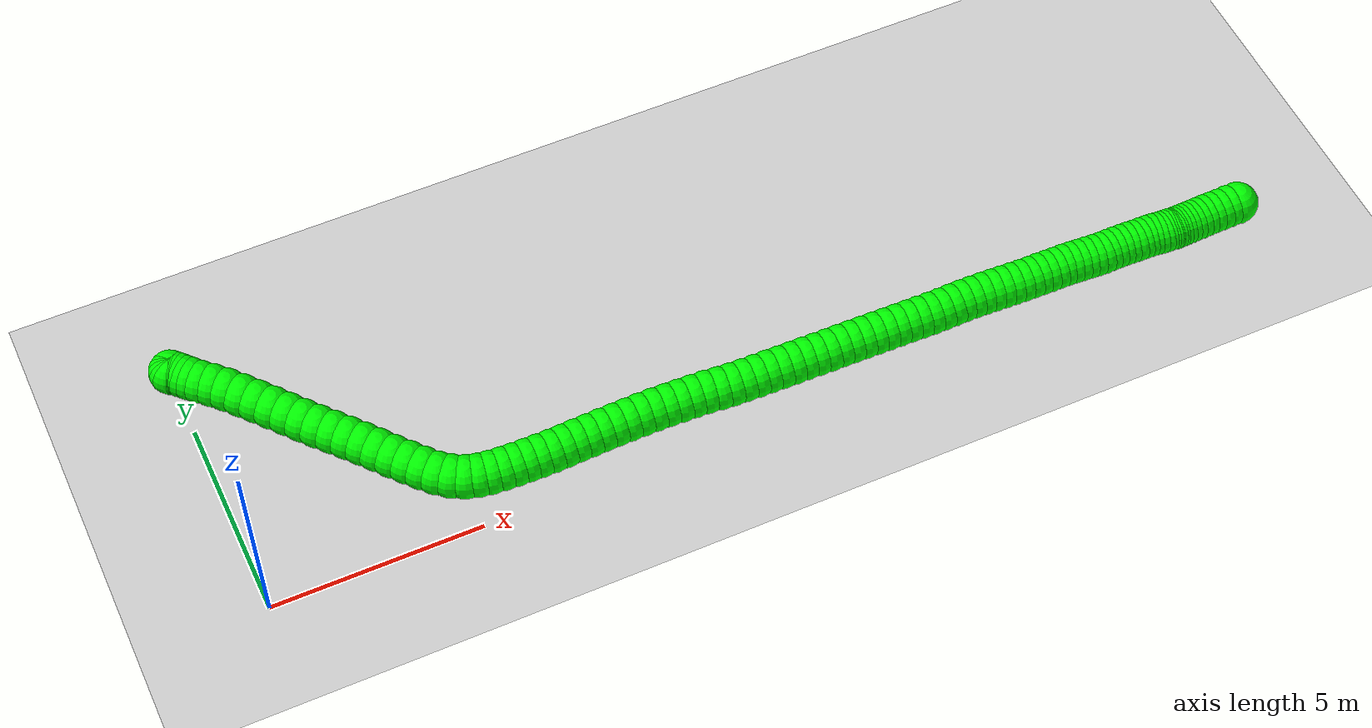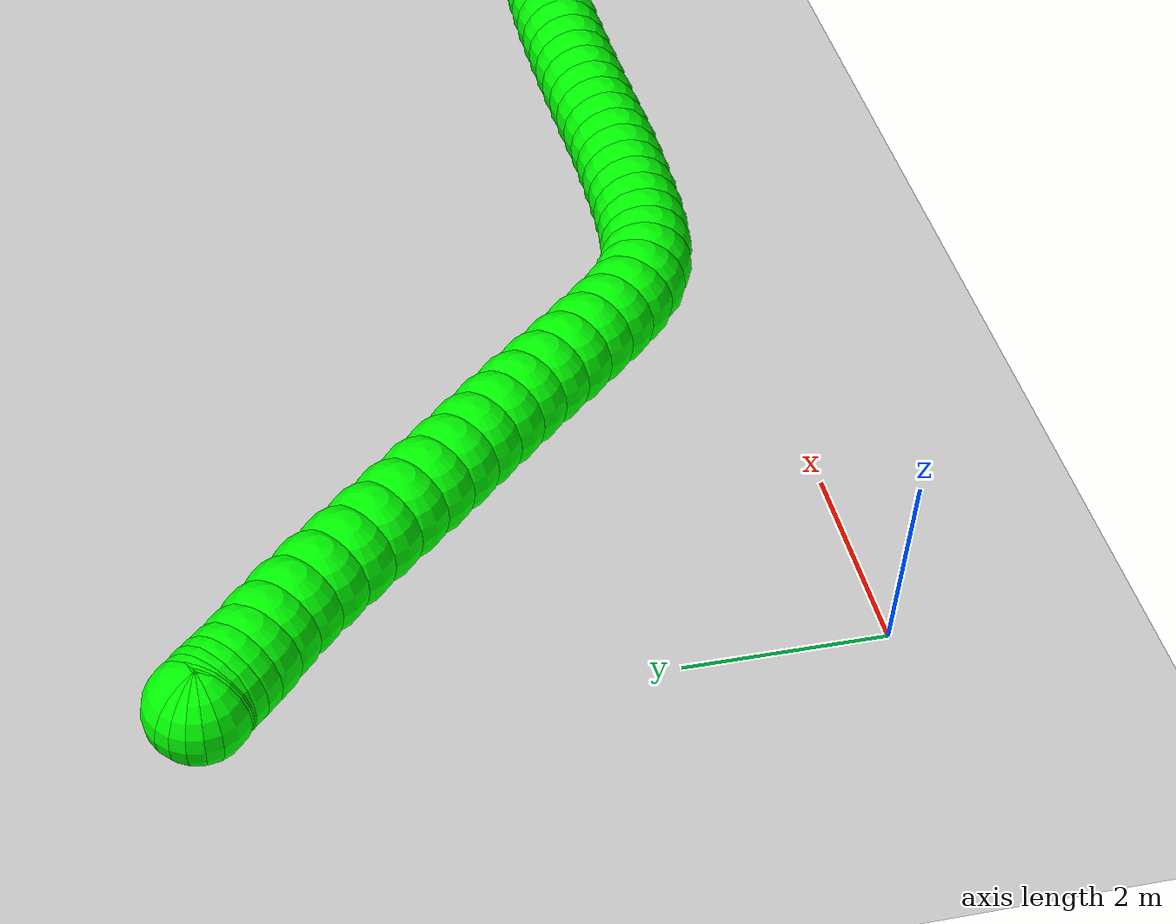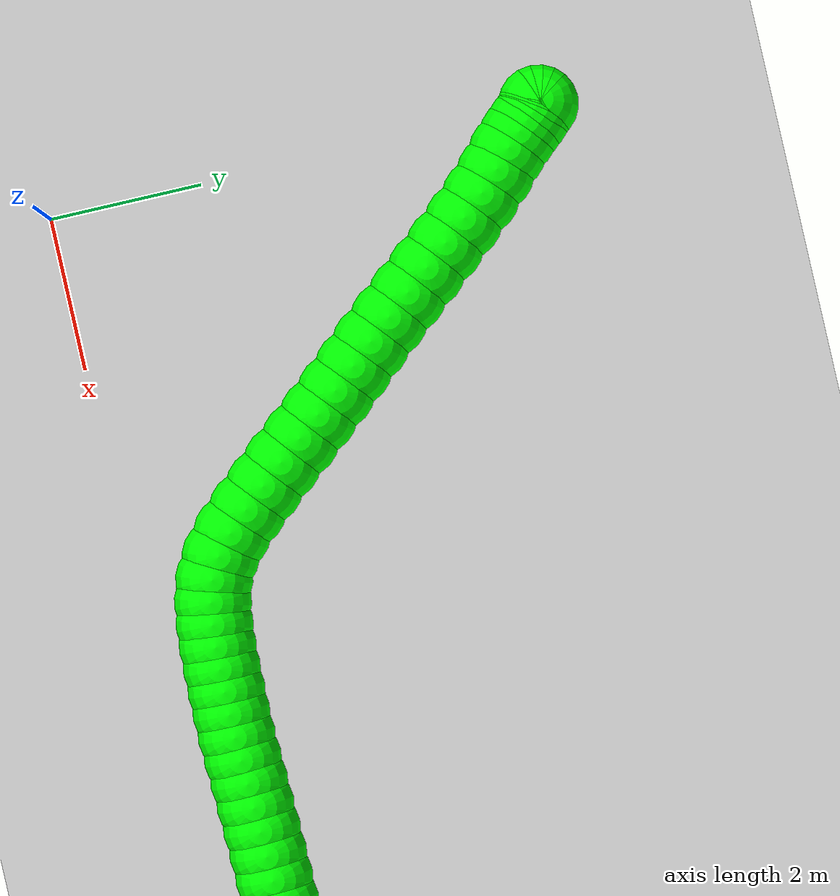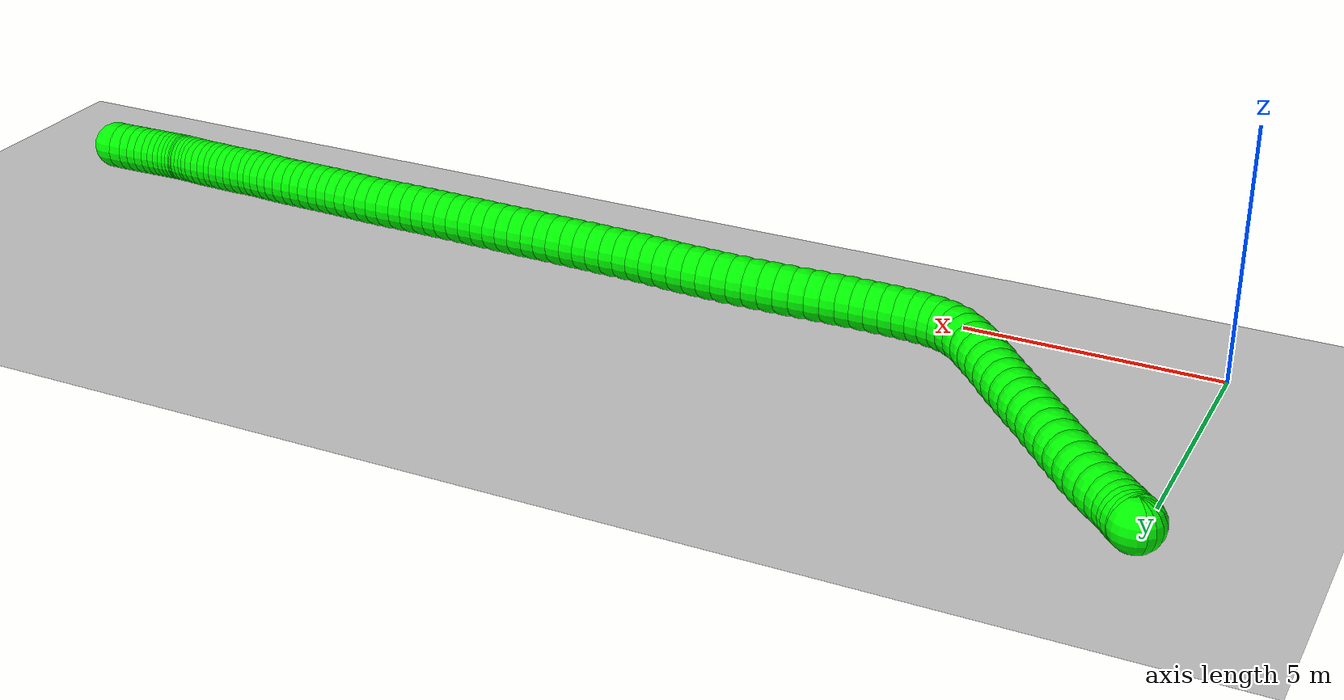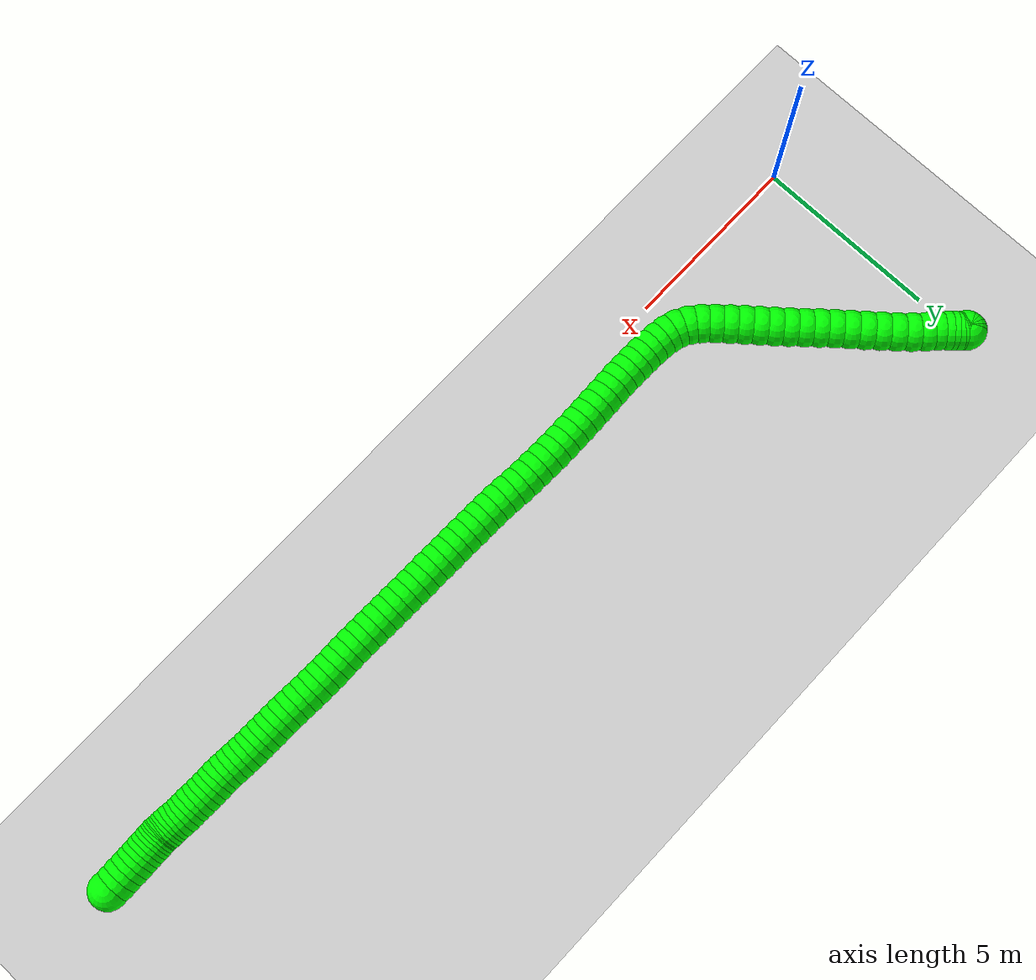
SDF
<sdf version="1.6">
 <world name="default">
  <include><uri>model://sun</uri></include>
  <include><uri>model://ground_plane</uri></include>
  <model name="marker_674">
   <static>true</static>
   <link name="link">
    <visual name="visual">
     <geometry><sphere><radius>0.5</radius></sphere></geometry>
     <material><ambient>0 1 0 1</ambient><diffuse>0 1 0 1</diffuse></material>
     <pose>24.420982491630593 0.6300563863723189 0.5 0 0 0</pose>
    </visual>
   </link>
  </model>
  <model name="marker_675">
   <static>true</static>
   <link name="link">
    <visual name="visual">
     <geometry><sphere><radius>0.5</radius></sphere></geometry>
     <material><ambient>0 1 0 1</ambient><diffuse>0 1 0 1</diffuse></material>
     <pose>24.180184734168744 0.6329165645176913 0.5 0 0 0</pose>
    </visual>
   </link>
  </model>
  <model name="marker_676">
   <static>true</static>
   <link name="link">
    <visual name="visual">
     <geometry><sphere><radius>0.5</radius></sphere></geometry>
     <material><ambient>0 1 0 1</ambient><diffuse>0 1 0 1</diffuse></material>
     <pose>23.95524102753745 0.6247446269574106 0.5 0 0 0</pose>
    </visual>
   </link>
  </model>
  <model name="marker_677">
   <static>true</static>
   <link name="link">
    <visual name="visual">
     <geometry><sphere><radius>0.5</radius></sphere></geometry>
     <material><ambient>0 1 0 1</ambient><diffuse>0 1 0 1</diffuse></material>
     <pose>23.749368135677127 0.6206586581700122 0.5 0 0 0</pose>
    </visual>
   </link>
  </model>
  <model name="marker_678">
   <static>true</static>
   <link name="link">
    <visual name="visual">
     <geometry><sphere><radius>0.5</radius></sphere></geometry>
     <material><ambient>0 1 0 1</ambient><diffuse>0 1 0 1</diffuse></material>
     <pose>23.560727907746017 0.6177984800246398 0.5 0 0 0</pose>
    </visual>
   </link>
  </model>
  <model name="marker_679">
   <static>true</static>
   <link name="link">
    <visual name="visual">
     <geometry><sphere><radius>0.5</radius></sphere></geometry>
     <material><ambient>0 1 0 1</ambient><diffuse>0 1 0 1</diffuse></material>
     <pose>23.390469188003895 0.6104437362160323 0.5 0 0 0</pose>
    </visual>
   </link>
  </model>
  <model name="marker_680">
   <static>true</static>
   <link name="link">
    <visual name="visual">
     <geometry><sphere><radius>0.5</radius></sphere></geometry>
     <material><ambient>0 1 0 1</ambient><diffuse>0 1 0 1</diffuse></material>
     <pose>23.238362207611868 0.605131976793866 0.5 0 0 0</pose>
    </visual>
   </link>
  </model>
  <model name="marker_681">
   <static>true</static>
   <link name="link">
    <visual name="visual">
     <geometry><sphere><radius>0.5</radius></sphere></geometry>
     <material><ambient>0 1 0 1</ambient><diffuse>0 1 0 1</diffuse></material>
     <pose>23.10509627315192 0.6006374111306308 0.5 0 0 0</pose>
    </visual>
   </link>
  </model>
  <model name="marker_682">
   <static>true</static>
   <link name="link">
    <visual name="visual">
     <geometry><sphere><radius>0.5</radius></sphere></geometry>
     <material><ambient>0 1 0 1</ambient><diffuse>0 1 0 1</diffuse></material>
     <pose>22.987454620650976 0.5973686361094219 0.5 0 0 0</pose>
    </visual>
   </link>
  </model>
  <model name="marker_683">
   <static>true</static>
   <link name="link">
    <visual name="visual">
     <geometry><sphere><radius>0.5</radius></sphere></geometry>
     <material><ambient>0 1 0 1</ambient><diffuse>0 1 0 1</diffuse></material>
     <pose>22.889573089470336 0.5940998610809548 0.5 0 0 0</pose>
    </visual>
   </link>
  </model>
  <model name="marker_684">
   <static>true</static>
   <link name="link">
    <visual name="visual">
     <geometry><sphere><radius>0.5</radius></sphere></geometry>
     <material><ambient>0 1 0 1</ambient><diffuse>0 1 0 1</diffuse></material>
     <pose>22.80846468454113 0.5912396829283242 0.5 0 0 0</pose>
    </visual>
   </link>
  </model>
  <model name="marker_685">
   <static>true</static>
   <link name="link">
    <visual name="visual">
     <geometry><sphere><radius>0.5</radius></sphere></geometry>
     <material><ambient>0 1 0 1</ambient><diffuse>0 1 0 1</diffuse></material>
     <pose>22.745737787800902 0.5855193266375794 0.5 0 0 0</pose>
    </visual>
   </link>
  </model>
  <model name="marker_686">
   <static>true</static>
   <link name="link">
    <visual name="visual">
     <geometry><sphere><radius>0.5</radius></sphere></geometry>
     <material><ambient>0 1 0 1</ambient><diffuse>0 1 0 1</diffuse></material>
     <pose>22.703690087769207 0.5875623110240205 0.5 0 0 0</pose>
    </visual>
   </link>
  </model>
  <model name="marker_687">
   <static>true</static>
   <link name="link">
    <visual name="visual">
     <geometry><sphere><radius>0.5</radius></sphere></geometry>
     <material><ambient>0 1 0 1</ambient><diffuse>0 1 0 1</diffuse></material>
     <pose>22.66669730251969 0.5896052954177198 0.5 0 0 0</pose>
    </visual>
   </link>
  </model>
  <model name="marker_688">
   <static>true</static>
   <link name="link">
    <visual name="visual">
     <geometry><sphere><radius>0.5</radius></sphere></geometry>
     <material><ambient>0 1 0 1</ambient><diffuse>0 1 0 1</diffuse></material>
     <pose>22.609255089400534 0.5985944267441898 0.5 0 0 0</pose>
    </visual>
   </link>
  </model>
  <model name="marker_689">
   <static>true</static>
   <link name="link">
    <visual name="visual">
     <geometry><sphere><radius>0.5</radius></sphere></geometry>
     <material><ambient>0 1 0 1</ambient><diffuse>0 1 0 1</diffuse></material>
     <pose>22.52791691559978 0.6034975892832615 0.5 0 0 0</pose>
    </visual>
   </link>
  </model>
  <model name="marker_690">
   <static>true</static>
   <link name="link">
    <visual name="visual">
     <geometry><sphere><radius>0.5</radius></sphere></geometry>
     <material><ambient>0 1 0 1</ambient><diffuse>0 1 0 1</diffuse></material>
     <pose>22.428197233577382 0.6043147830349346 0.5 0 0 0</pose>
    </visual>
   </link>
  </model>
  <model name="marker_691">
   <static>true</static>
   <link name="link">
    <visual name="visual">
     <geometry><sphere><radius>0.5</radius></sphere></geometry>
     <material><ambient>0 1 0 1</ambient><diffuse>0 1 0 1</diffuse></material>
     <pose>22.306649510586688 0.614121108120336 0.5 0 0 0</pose>
    </visual>
   </link>
  </model>
  <model name="marker_692">
   <static>true</static>
   <link name="link">
    <visual name="visual">
     <geometry><sphere><radius>0.5</radius></sphere></geometry>
     <material><ambient>0 1 0 1</ambient><diffuse>0 1 0 1</diffuse></material>
     <pose>22.16970727447588 0.6300563863723189 0.5 0 0 0</pose>
    </visual>
   </link>
  </model>
  <model name="marker_693">
   <static>true</static>
   <link name="link">
    <visual name="visual">
     <geometry><sphere><radius>0.5</radius></sphere></geometry>
     <material><ambient>0 1 0 1</ambient><diffuse>0 1 0 1</diffuse></material>
     <pose>22.023574284286905 0.6394541145746255 0.5 0 0 0</pose>
    </visual>
   </link>
  </model>
  <model name="marker_694">
   <static>true</static>
   <link name="link">
    <visual name="visual">
     <geometry><sphere><radius>0.5</radius></sphere></geometry>
     <material><ambient>0 1 0 1</ambient><diffuse>0 1 0 1</diffuse></material>
     <pose>21.870318459635108 0.6419056958441614 0.5 0 0 0</pose>
    </visual>
   </link>
  </model>
  <model name="marker_695">
   <static>true</static>
   <link name="link">
    <visual name="visual">
     <geometry><sphere><radius>0.5</radius></sphere></geometry>
     <material><ambient>0 1 0 1</ambient><diffuse>0 1 0 1</diffuse></material>
     <pose>21.705344423514052 0.6427228896030927 0.5 0 0 0</pose>
    </visual>
   </link>
  </model>
  <model name="marker_696">
   <static>true</static>
   <link name="link">
    <visual name="visual">
     <geometry><sphere><radius>0.5</radius></sphere></geometry>
     <material><ambient>0 1 0 1</ambient><diffuse>0 1 0 1</diffuse></material>
     <pose>21.53600477919281 0.6525292146812359 0.5 0 0 0</pose>
    </visual>
   </link>
  </model>
  <model name="marker_697">
   <static>true</static>
   <link name="link">
    <visual name="visual">
     <geometry><sphere><radius>0.5</radius></sphere></geometry>
     <material><ambient>0 1 0 1</ambient><diffuse>0 1 0 1</diffuse></material>
     <pose>21.360001838151835 0.6566151834613763 0.5 0 0 0</pose>
    </visual>
   </link>
  </model>
  <model name="marker_698">
   <static>true</static>
   <link name="link">
    <visual name="visual">
     <geometry><sphere><radius>0.5</radius></sphere></geometry>
     <material><ambient>0 1 0 1</ambient><diffuse>0 1 0 1</diffuse></material>
     <pose>21.17963328891067 0.6578409740961442 0.5 0 0 0</pose>
    </visual>
   </link>
  </model>
  <model name="marker_699">
   <static>true</static>
   <link name="link">
    <visual name="visual">
     <geometry><sphere><radius>0.5</radius></sphere></geometry>
     <material><ambient>0 1 0 1</ambient><diffuse>0 1 0 1</diffuse></material>
     <pose>21.00202196589948 0.6574323772203076 0.5 0 0 0</pose>
    </visual>
   </link>
  </model>
  <model name="marker_700">
   <static>true</static>
   <link name="link">
    <visual name="visual">
     <geometry><sphere><radius>0.5</radius></sphere></geometry>
     <material><ambient>0 1 0 1</ambient><diffuse>0 1 0 1</diffuse></material>
     <pose>20.818896190428333 0.6521206177981412 0.5 0 0 0</pose>
    </visual>
   </link>
  </model>
  <model name="marker_701">
   <static>true</static>
   <link name="link">
    <visual name="visual">
     <geometry><sphere><radius>0.5</radius></sphere></geometry>
     <material><ambient>0 1 0 1</ambient><diffuse>0 1 0 1</diffuse></material>
     <pose>20.630026193658335 0.6582495709792389 0.5 0 0 0</pose>
    </visual>
   </link>
  </model>
  <model name="marker_702">
   <static>true</static>
   <link name="link">
    <visual name="visual">
     <geometry><sphere><radius>0.5</radius></sphere></geometry>
     <material><ambient>0 1 0 1</ambient><diffuse>0 1 0 1</diffuse></material>
     <pose>20.440237121467455 0.6717332679616859 0.5 0 0 0</pose>
    </visual>
   </link>
  </model>
  <model name="marker_703">
   <static>true</static>
   <link name="link">
    <visual name="visual">
     <geometry><sphere><radius>0.5</radius></sphere></geometry>
     <material><ambient>0 1 0 1</ambient><diffuse>0 1 0 1</diffuse></material>
     <pose>20.24309544597486 0.6831739805504337 0.5 0 0 0</pose>
    </visual>
   </link>
  </model>
  <model name="marker_704">
   <static>true</static>
   <link name="link">
    <visual name="visual">
     <geometry><sphere><radius>0.5</radius></sphere></geometry>
     <material><ambient>0 1 0 1</ambient><diffuse>0 1 0 1</diffuse></material>
     <pose>20.04503469509404 0.6954318869053708 0.5 0 0 0</pose>
    </visual>
   </link>
  </model>
  <model name="marker_705">
   <static>true</static>
   <link name="link">
    <visual name="visual">
     <geometry><sphere><radius>0.5</radius></sphere></geometry>
     <material><ambient>0 1 0 1</ambient><diffuse>0 1 0 1</diffuse></material>
     <pose>19.839621340944152 0.706464002618282 0.5 0 0 0</pose>
    </visual>
   </link>
  </model>
  <model name="marker_706">
   <static>true</static>
   <link name="link">
    <visual name="visual">
     <geometry><sphere><radius>0.5</radius></sphere></geometry>
     <material><ambient>0 1 0 1</ambient><diffuse>0 1 0 1</diffuse></material>
     <pose>19.634207986761616 0.7060554057424455 0.5 0 0 0</pose>
    </visual>
   </link>
  </model>
  <model name="marker_707">
   <static>true</static>
   <link name="link">
    <visual name="visual">
     <geometry><sphere><radius>0.5</radius></sphere></geometry>
     <material><ambient>0 1 0 1</ambient><diffuse>0 1 0 1</diffuse></material>
     <pose>19.417306189981367 0.7097327776467492 0.5 0 0 0</pose>
    </visual>
   </link>
  </model>
  <model name="marker_708">
   <static>true</static>
   <link name="link">
    <visual name="visual">
     <geometry><sphere><radius>0.5</radius></sphere></geometry>
     <material><ambient>0 1 0 1</ambient><diffuse>0 1 0 1</diffuse></material>
     <pose>19.197876935810033 0.7150445370616574 0.5 0 0 0</pose>
    </visual>
   </link>
  </model>
  <model name="marker_709">
   <static>true</static>
   <link name="link">
    <visual name="visual">
     <geometry><sphere><radius>0.5</radius></sphere></geometry>
     <material><ambient>0 1 0 1</ambient><diffuse>0 1 0 1</diffuse></material>
     <pose>18.97040577178765 0.715453133937494 0.5 0 0 0</pose>
    </visual>
   </link>
  </model>
  <model name="marker_710">
   <static>true</static>
   <link name="link">
    <visual name="visual">
     <geometry><sphere><radius>0.5</radius></sphere></geometry>
     <material><ambient>0 1 0 1</ambient><diffuse>0 1 0 1</diffuse></material>
     <pose>18.73650107991708 0.7203562964838238 0.5 0 0 0</pose>
    </visual>
   </link>
  </model>
  <model name="marker_711">
   <static>true</static>
   <link name="link">
    <visual name="visual">
     <geometry><sphere><radius>0.5</radius></sphere></geometry>
     <material><ambient>0 1 0 1</ambient><diffuse>0 1 0 1</diffuse></material>
     <pose>18.496392629037217 0.7297540246788723 0.5 0 0 0</pose>
    </visual>
   </link>
  </model>
  <model name="marker_712">
   <static>true</static>
   <link name="link">
    <visual name="visual">
     <geometry><sphere><radius>0.5</radius></sphere></geometry>
     <material><ambient>0 1 0 1</ambient><diffuse>0 1 0 1</diffuse></material>
     <pose>18.24916134369453 0.7403775435159469 0.5 0 0 0</pose>
    </visual>
   </link>
  </model>
  <model name="marker_713">
   <static>true</static>
   <link name="link">
    <visual name="visual">
     <geometry><sphere><radius>0.5</radius></sphere></geometry>
     <material><ambient>0 1 0 1</ambient><diffuse>0 1 0 1</diffuse></material>
     <pose>17.997104912473866 0.7526354498708842 0.5 0 0 0</pose>
    </visual>
   </link>
  </model>
  <model name="marker_714">
   <static>true</static>
   <link name="link">
    <visual name="visual">
     <geometry><sphere><radius>0.5</radius></sphere></geometry>
     <material><ambient>0 1 0 1</ambient><diffuse>0 1 0 1</diffuse></material>
     <pose>17.73953402876059 0.7632589687007005 0.5 0 0 0</pose>
    </visual>
   </link>
  </model>
  <model name="marker_715">
   <static>true</static>
   <link name="link">
    <visual name="visual">
     <geometry><sphere><radius>0.5</radius></sphere></geometry>
     <material><ambient>0 1 0 1</ambient><diffuse>0 1 0 1</diffuse></material>
     <pose>17.478746381139544 0.7681621312470304 0.5 0 0 0</pose>
    </visual>
   </link>
  </model>
  <model name="marker_716">
   <static>true</static>
   <link name="link">
    <visual name="visual">
     <geometry><sphere><radius>0.5</radius></sphere></geometry>
     <material><ambient>0 1 0 1</ambient><diffuse>0 1 0 1</diffuse></material>
     <pose>17.215201507288523 0.7726566969030072 0.5 0 0 0</pose>
    </visual>
   </link>
  </model>
  <model name="marker_717">
   <static>true</static>
   <link name="link">
    <visual name="visual">
     <geometry><sphere><radius>0.5</radius></sphere></geometry>
     <material><ambient>0 1 0 1</ambient><diffuse>0 1 0 1</diffuse></material>
     <pose>16.943844492457995 0.7661191468533312 0.5 0 0 0</pose>
    </visual>
   </link>
  </model>
  <model name="marker_718">
   <static>true</static>
   <link name="link">
    <visual name="visual">
     <geometry><sphere><radius>0.5</radius></sphere></geometry>
     <material><ambient>0 1 0 1</ambient><diffuse>0 1 0 1</diffuse></material>
     <pose>16.666283718585518 0.7608073874311647 0.5 0 0 0</pose>
    </visual>
   </link>
  </model>
  <model name="marker_719">
   <static>true</static>
   <link name="link">
    <visual name="visual">
     <geometry><sphere><radius>0.5</radius></sphere></geometry>
     <material><ambient>0 1 0 1</ambient><diffuse>0 1 0 1</diffuse></material>
     <pose>16.38964202013392 0.7599901936794916 0.5 0 0 0</pose>
    </visual>
   </link>
  </model>
  <model name="marker_720">
   <static>true</static>
   <link name="link">
    <visual name="visual">
     <geometry><sphere><radius>0.5</radius></sphere></geometry>
     <material><ambient>0 1 0 1</ambient><diffuse>0 1 0 1</diffuse></material>
     <pose>16.107715638061258 0.7657105499774945 0.5 0 0 0</pose>
    </visual>
   </link>
  </model>
  <model name="marker_721">
   <static>true</static>
   <link name="link">
    <visual name="visual">
     <geometry><sphere><radius>0.5</radius></sphere></geometry>
     <material><ambient>0 1 0 1</ambient><diffuse>0 1 0 1</diffuse></material>
     <pose>15.826019024860138 0.7718395031513341 0.5 0 0 0</pose>
    </visual>
   </link>
  </model>
  <model name="marker_722">
   <static>true</static>
   <link name="link">
    <visual name="visual">
     <geometry><sphere><radius>0.5</radius></sphere></geometry>
     <material><ambient>0 1 0 1</ambient><diffuse>0 1 0 1</diffuse></material>
     <pose>15.54156518542904 0.7771512625662423 0.5 0 0 0</pose>
    </visual>
   </link>
  </model>
  <model name="marker_723">
   <static>true</static>
   <link name="link">
    <visual name="visual">
     <geometry><sphere><radius>0.5</radius></sphere></geometry>
     <material><ambient>0 1 0 1</ambient><diffuse>0 1 0 1</diffuse></material>
     <pose>15.252975506636643 0.7832802157400818 0.5 0 0 0</pose>
    </visual>
   </link>
  </model>
  <model name="marker_724">
   <static>true</static>
   <link name="link">
    <visual name="visual">
     <geometry><sphere><radius>0.5</radius></sphere></geometry>
     <material><ambient>0 1 0 1</ambient><diffuse>0 1 0 1</diffuse></material>
     <pose>14.963466752456023 0.7890005720380847 0.5 0 0 0</pose>
    </visual>
   </link>
  </model>
  <model name="marker_725">
   <static>true</static>
   <link name="link">
    <visual name="visual">
     <geometry><sphere><radius>0.5</radius></sphere></geometry>
     <material><ambient>0 1 0 1</ambient><diffuse>0 1 0 1</diffuse></material>
     <pose>14.674417535953186 0.7947209283360877 0.5 0 0 0</pose>
    </visual>
   </link>
  </model>
  <model name="marker_726">
   <static>true</static>
   <link name="link">
    <visual name="visual">
     <geometry><sphere><radius>0.5</radius></sphere></geometry>
     <material><ambient>0 1 0 1</ambient><diffuse>0 1 0 1</diffuse></material>
     <pose>14.384449244062125 0.8004412846340908 0.5 0 0 0</pose>
    </visual>
   </link>
  </model>
  <model name="marker_727">
   <static>true</static>
   <link name="link">
    <visual name="visual">
     <geometry><sphere><radius>0.5</radius></sphere></geometry>
     <material><ambient>0 1 0 1</ambient><diffuse>0 1 0 1</diffuse></material>
     <pose>14.093561876750188 0.8057530440489988 0.5 0 0 0</pose>
    </visual>
   </link>
  </model>
  <model name="marker_728">
   <static>true</static>
   <link name="link">
    <visual name="visual">
     <geometry><sphere><radius>0.5</radius></sphere></geometry>
     <material><ambient>0 1 0 1</ambient><diffuse>0 1 0 1</diffuse></material>
     <pose>13.796470750428954 0.8037100596552996 0.5 0 0 0</pose>
    </visual>
   </link>
  </model>
  <model name="marker_729">
   <static>true</static>
   <link name="link">
    <visual name="visual">
     <geometry><sphere><radius>0.5</radius></sphere></geometry>
     <material><ambient>0 1 0 1</ambient><diffuse>0 1 0 1</diffuse></material>
     <pose>13.50190708149881 0.811473400347002 0.5 0 0 0</pose>
    </visual>
   </link>
  </model>
  <model name="marker_730">
   <static>true</static>
   <link name="link">
    <visual name="visual">
     <geometry><sphere><radius>0.5</radius></sphere></geometry>
     <material><ambient>0 1 0 1</ambient><diffuse>0 1 0 1</diffuse></material>
     <pose>13.205275492855364 0.8196453379145408 0.5 0 0 0</pose>
    </visual>
   </link>
  </model>
  <model name="marker_731">
   <static>true</static>
   <link name="link">
    <visual name="visual">
     <geometry><sphere><radius>0.5</radius></sphere></geometry>
     <material><ambient>0 1 0 1</ambient><diffuse>0 1 0 1</diffuse></material>
     <pose>12.906575984563926 0.8208711285493087 0.5 0 0 0</pose>
    </visual>
   </link>
  </model>
  <model name="marker_732">
   <static>true</static>
   <link name="link">
    <visual name="visual">
     <geometry><sphere><radius>0.5</radius></sphere></geometry>
     <material><ambient>0 1 0 1</ambient><diffuse>0 1 0 1</diffuse></material>
     <pose>12.609255089403797 0.8261828879642167 0.5 0 0 0</pose>
    </visual>
   </link>
  </model>
  <model name="marker_733">
   <static>true</static>
   <link name="link">
    <visual name="visual">
     <geometry><sphere><radius>0.5</radius></sphere></geometry>
     <material><ambient>0 1 0 1</ambient><diffuse>0 1 0 1</diffuse></material>
     <pose>12.307109048300392 0.835172019290687 0.5 0 0 0</pose>
    </visual>
   </link>
  </model>
  <model name="marker_734">
   <static>true</static>
   <link name="link">
    <visual name="visual">
     <geometry><sphere><radius>0.5</radius></sphere></geometry>
     <material><ambient>0 1 0 1</ambient><diffuse>0 1 0 1</diffuse></material>
     <pose>12.00680115803874 0.8392579880708271 0.5 0 0 0</pose>
    </visual>
   </link>
  </model>
  <model name="marker_735">
   <static>true</static>
   <link name="link">
    <visual name="visual">
     <geometry><sphere><radius>0.5</radius></sphere></geometry>
     <material><ambient>0 1 0 1</ambient><diffuse>0 1 0 1</diffuse></material>
     <pose>11.704655116967986 0.8470213287625294 0.5 0 0 0</pose>
    </visual>
   </link>
  </model>
  <model name="marker_736">
   <static>true</static>
   <link name="link">
    <visual name="visual">
     <geometry><sphere><radius>0.5</radius></sphere></geometry>
     <material><ambient>0 1 0 1</ambient><diffuse>0 1 0 1</diffuse></material>
     <pose>11.402049538186795 0.8588706382343719 0.5 0 0 0</pose>
    </visual>
   </link>
  </model>
  <model name="marker_737">
   <static>true</static>
   <link name="link">
    <visual name="visual">
     <geometry><sphere><radius>0.5</radius></sphere></geometry>
     <material><ambient>0 1 0 1</ambient><diffuse>0 1 0 1</diffuse></material>
     <pose>11.094848582333865 0.8805262727843577 0.5 0 0 0</pose>
    </visual>
   </link>
  </model>
  <model name="marker_738">
   <static>true</static>
   <link name="link">
    <visual name="visual">
     <geometry><sphere><radius>0.5</radius></sphere></geometry>
     <material><ambient>0 1 0 1</ambient><diffuse>0 1 0 1</diffuse></material>
     <pose>10.782592711731413 0.9095366511429509 0.5 0 0 0</pose>
    </visual>
   </link>
  </model>
  <model name="marker_739">
   <static>true</static>
   <link name="link">
    <visual name="visual">
     <geometry><sphere><radius>0.5</radius></sphere></geometry>
     <material><ambient>0 1 0 1</ambient><diffuse>0 1 0 1</diffuse></material>
     <pose>10.47125591654984 0.9279235106644695 0.5 0 0 0</pose>
    </visual>
   </link>
  </model>
  <model name="marker_740">
   <static>true</static>
   <link name="link">
    <visual name="visual">
     <geometry><sphere><radius>0.5</radius></sphere></geometry>
     <material><ambient>0 1 0 1</ambient><diffuse>0 1 0 1</diffuse></material>
     <pose>10.158540508269601 0.9373212388667762 0.5 0 0 0</pose>
    </visual>
   </link>
  </model>
  <model name="marker_741">
   <static>true</static>
   <link name="link">
    <visual name="visual">
     <geometry><sphere><radius>0.5</radius></sphere></geometry>
     <material><ambient>0 1 0 1</ambient><diffuse>0 1 0 1</diffuse></material>
     <pose>9.845365562246272 0.9495791452217134 0.5 0 0 0</pose>
    </visual>
   </link>
  </model>
  <model name="marker_742">
   <static>true</static>
   <link name="link">
    <visual name="visual">
     <geometry><sphere><radius>0.5</radius></sphere></geometry>
     <material><ambient>0 1 0 1</ambient><diffuse>0 1 0 1</diffuse></material>
     <pose>9.529203621154068 0.9561166952713895 0.5 0 0 0</pose>
    </visual>
   </link>
  </model>
  <model name="marker_743">
   <static>true</static>
   <link name="link">
    <visual name="visual">
     <geometry><sphere><radius>0.5</radius></sphere></geometry>
     <material><ambient>0 1 0 1</ambient><diffuse>0 1 0 1</diffuse></material>
     <pose>9.20936537844366 0.9557080983955529 0.5 0 0 0</pose>
    </visual>
   </link>
  </model>
  <model name="marker_744">
   <static>true</static>
   <link name="link">
    <visual name="visual">
     <geometry><sphere><radius>0.5</radius></sphere></geometry>
     <material><ambient>0 1 0 1</ambient><diffuse>0 1 0 1</diffuse></material>
     <pose>8.889756904572144 0.9508049358564813 0.5 0 0 0</pose>
    </visual>
   </link>
  </model>
  <model name="marker_745">
   <static>true</static>
   <link name="link">
    <visual name="visual">
     <geometry><sphere><radius>0.5</radius></sphere></geometry>
     <material><ambient>0 1 0 1</ambient><diffuse>0 1 0 1</diffuse></material>
     <pose>8.570148430700627 0.944267385799547 0.5 0 0 0</pose>
    </visual>
   </link>
  </model>
  <model name="marker_746">
   <static>true</static>
   <link name="link">
    <visual name="visual">
     <geometry><sphere><radius>0.5</radius></sphere></geometry>
     <material><ambient>0 1 0 1</ambient><diffuse>0 1 0 1</diffuse></material>
     <pose>8.250769725668006 0.9352782544803351 0.5 0 0 0</pose>
    </visual>
   </link>
  </model>
  <model name="marker_747">
   <static>true</static>
   <link name="link">
    <visual name="visual">
     <geometry><sphere><radius>0.5</radius></sphere></geometry>
     <material><ambient>0 1 0 1</ambient><diffuse>0 1 0 1</diffuse></material>
     <pose>7.934148246865363 0.9238375418843292 0.5 0 0 0</pose>
    </visual>
   </link>
  </model>
  <model name="marker_748">
   <static>true</static>
   <link name="link">
    <visual name="visual">
     <geometry><sphere><radius>0.5</radius></sphere></geometry>
     <material><ambient>0 1 0 1</ambient><diffuse>0 1 0 1</diffuse></material>
     <pose>7.62235191397335 0.9132140230472546 0.5 0 0 0</pose>
    </visual>
   </link>
  </model>
  <model name="marker_749">
   <static>true</static>
   <link name="link">
    <visual name="visual">
     <geometry><sphere><radius>0.5</radius></sphere></geometry>
     <material><ambient>0 1 0 1</ambient><diffuse>0 1 0 1</diffuse></material>
     <pose>7.316529571251738 0.8989131323058763 0.5 0 0 0</pose>
    </visual>
   </link>
  </model>
  <model name="marker_750">
   <static>true</static>
   <link name="link">
    <visual name="visual">
     <geometry><sphere><radius>0.5</radius></sphere></geometry>
     <material><ambient>0 1 0 1</ambient><diffuse>0 1 0 1</diffuse></material>
     <pose>7.015072836730315 0.8874724197171285 0.5 0 0 0</pose>
    </visual>
   </link>
  </model>
  <model name="marker_751">
   <static>true</static>
   <link name="link">
    <visual name="visual">
     <geometry><sphere><radius>0.5</radius></sphere></geometry>
     <material><ambient>0 1 0 1</ambient><diffuse>0 1 0 1</diffuse></material>
     <pose>6.714764946468664 0.8866552259581972 0.5 0 0 0</pose>
    </visual>
   </link>
  </model>
  <model name="marker_752">
   <static>true</static>
   <link name="link">
    <visual name="visual">
     <geometry><sphere><radius>0.5</radius></sphere></geometry>
     <material><ambient>0 1 0 1</ambient><diffuse>0 1 0 1</diffuse></material>
     <pose>6.421350121798292 0.8899240009866644 0.5 0 0 0</pose>
    </visual>
   </link>
  </model>
  <model name="marker_753">
   <static>true</static>
   <link name="link">
    <visual name="visual">
     <geometry><sphere><radius>0.5</radius></sphere></geometry>
     <material><ambient>0 1 0 1</ambient><diffuse>0 1 0 1</diffuse></material>
     <pose>6.130922292196791 0.8952357604015726 0.5 0 0 0</pose>
    </visual>
   </link>
  </model>
  <model name="marker_754">
   <static>true</static>
   <link name="link">
    <visual name="visual">
     <geometry><sphere><radius>0.5</radius></sphere></geometry>
     <material><ambient>0 1 0 1</ambient><diffuse>0 1 0 1</diffuse></material>
     <pose>5.846008915055253 0.9066764729975785 0.5 0 0 0</pose>
    </visual>
   </link>
  </model>
  <model name="marker_755">
   <static>true</static>
   <link name="link">
    <visual name="visual">
     <geometry><sphere><radius>0.5</radius></sphere></geometry>
     <material><ambient>0 1 0 1</ambient><diffuse>0 1 0 1</diffuse></material>
     <pose>5.561784844463047 0.9311922856929367 0.5 0 0 0</pose>
    </visual>
   </link>
  </model>
  <model name="marker_756">
   <static>true</static>
   <link name="link">
    <visual name="visual">
     <geometry><sphere><radius>0.5</radius></sphere></geometry>
     <material><ambient>0 1 0 1</ambient><diffuse>0 1 0 1</diffuse></material>
     <pose>5.280777537811261 0.9745035547929082 0.5 0 0 0</pose>
    </visual>
   </link>
  </model>
  <model name="marker_757">
   <static>true</static>
   <link name="link">
    <visual name="visual">
     <geometry><sphere><radius>0.5</radius></sphere></geometry>
     <material><ambient>0 1 0 1</ambient><diffuse>0 1 0 1</diffuse></material>
     <pose>5.005973990168767 1.0541799460673384 0.5 0 0 0</pose>
    </visual>
   </link>
  </model>
  <model name="marker_758">
   <static>true</static>
   <link name="link">
    <visual name="visual">
     <geometry><sphere><radius>0.5</radius></sphere></geometry>
     <material><ambient>0 1 0 1</ambient><diffuse>0 1 0 1</diffuse></material>
     <pose>4.736225357308449 1.2004576285095887 0.5 0 0 0</pose>
    </visual>
   </link>
  </model>
  <model name="marker_759">
   <static>true</static>
   <link name="link">
    <visual name="visual">
     <geometry><sphere><radius>0.5</radius></sphere></geometry>
     <material><ambient>0 1 0 1</ambient><diffuse>0 1 0 1</diffuse></material>
     <pose>4.480952162147366 1.4100678270839335 0.5 0 0 0</pose>
    </visual>
   </link>
  </model>
  <model name="marker_760">
   <static>true</static>
   <link name="link">
    <visual name="visual">
     <geometry><sphere><radius>0.5</radius></sphere></geometry>
     <material><ambient>0 1 0 1</ambient><diffuse>0 1 0 1</diffuse></material>
     <pose>4.2344101833540115 1.6691182479393476 0.5 0 0 0</pose>
    </visual>
   </link>
  </model>
  <model name="marker_761">
   <static>true</static>
   <link name="link">
    <visual name="visual">
     <geometry><sphere><radius>0.5</radius></sphere></geometry>
     <material><ambient>0 1 0 1</ambient><diffuse>0 1 0 1</diffuse></material>
     <pose>3.993612425924816 1.9465555283162805 0.5 0 0 0</pose>
    </visual>
   </link>
  </model>
  <model name="marker_762">
   <static>true</static>
   <link name="link">
    <visual name="visual">
     <geometry><sphere><radius>0.5</radius></sphere></geometry>
     <material><ambient>0 1 0 1</ambient><diffuse>0 1 0 1</diffuse></material>
     <pose>3.749368135651004 2.234207730654451 0.5 0 0 0</pose>
    </visual>
   </link>
  </model>
  <model name="marker_763">
   <static>true</static>
   <link name="link">
    <visual name="visual">
     <geometry><sphere><radius>0.5</radius></sphere></geometry>
     <material><ambient>0 1 0 1</ambient><diffuse>0 1 0 1</diffuse></material>
     <pose>3.5069619962515985 2.530849064319092 0.5 0 0 0</pose>
    </visual>
   </link>
  </model>
  <model name="marker_764">
   <static>true</static>
   <link name="link">
    <visual name="visual">
     <geometry><sphere><radius>0.5</radius></sphere></geometry>
     <material><ambient>0 1 0 1</ambient><diffuse>0 1 0 1</diffuse></material>
     <pose>3.264555856819541 2.823404429196334 0.5 0 0 0</pose>
    </visual>
   </link>
  </model>
  <model name="marker_765">
   <static>true</static>
   <link name="link">
    <visual name="visual">
     <geometry><sphere><radius>0.5</radius></sphere></geometry>
     <material><ambient>0 1 0 1</ambient><diffuse>0 1 0 1</diffuse></material>
     <pose>3.0175543403484 3.1094222440166424 0.5 0 0 0</pose>
    </visual>
   </link>
  </model>
  <model name="marker_766">
   <static>true</static>
   <link name="link">
    <visual name="visual">
     <geometry><sphere><radius>0.5</radius></sphere></geometry>
     <material><ambient>0 1 0 1</ambient><diffuse>0 1 0 1</diffuse></material>
     <pose>2.76572767796663 3.3974830432306495 0.5 0 0 0</pose>
    </visual>
   </link>
  </model>
  <model name="marker_767">
   <static>true</static>
   <link name="link">
    <visual name="visual">
     <geometry><sphere><radius>0.5</radius></sphere></geometry>
     <material><ambient>0 1 0 1</ambient><diffuse>0 1 0 1</diffuse></material>
     <pose>2.514360553295299 3.6814578736645167 0.5 0 0 0</pose>
    </visual>
   </link>
  </model>
  <model name="marker_768">
   <static>true</static>
   <link name="link">
    <visual name="visual">
     <geometry><sphere><radius>0.5</radius></sphere></geometry>
     <material><ambient>0 1 0 1</ambient><diffuse>0 1 0 1</diffuse></material>
     <pose>2.2623041220746347 3.976464819811295 0.5 0 0 0</pose>
    </visual>
   </link>
  </model>
  <model name="marker_769">
   <static>true</static>
   <link name="link">
    <visual name="visual">
     <geometry><sphere><radius>0.5</radius></sphere></geometry>
     <material><ambient>0 1 0 1</ambient><diffuse>0 1 0 1</diffuse></material>
     <pose>2.0123156105019677 4.278417912890844 0.5 0 0 0</pose>
    </visual>
   </link>
  </model>
  <model name="marker_770">
   <static>true</static>
   <link name="link">
    <visual name="visual">
     <geometry><sphere><radius>0.5</radius></sphere></geometry>
     <material><ambient>0 1 0 1</ambient><diffuse>0 1 0 1</diffuse></material>
     <pose>1.7597996415708657 4.583639780991602 0.5 0 0 0</pose>
    </visual>
   </link>
  </model>
  <model name="marker_771">
   <static>true</static>
   <link name="link">
    <visual name="visual">
     <geometry><sphere><radius>0.5</radius></sphere></geometry>
     <material><ambient>0 1 0 1</ambient><diffuse>0 1 0 1</diffuse></material>
     <pose>1.5072836726397632 4.8851842771953145 0.5 0 0 0</pose>
    </visual>
   </link>
  </model>
  <model name="marker_772">
   <static>true</static>
   <link name="link">
    <visual name="visual">
     <geometry><sphere><radius>0.5</radius></sphere></geometry>
     <material><ambient>0 1 0 1</ambient><diffuse>0 1 0 1</diffuse></material>
     <pose>1.250861633218909 5.185911579640096 0.5 0 0 0</pose>
    </visual>
   </link>
  </model>
  <model name="marker_773">
   <static>true</static>
   <link name="link">
    <visual name="visual">
     <geometry><sphere><radius>0.5</radius></sphere></geometry>
     <material><ambient>0 1 0 1</ambient><diffuse>0 1 0 1</diffuse></material>
     <pose>0.9932907495056322 5.471929394460403 0.5 0 0 0</pose>
    </visual>
   </link>
  </model>
  <model name="marker_774">
   <static>true</static>
   <link name="link">
    <visual name="visual">
     <geometry><sphere><radius>0.5</radius></sphere></geometry>
     <material><ambient>0 1 0 1</ambient><diffuse>0 1 0 1</diffuse></material>
     <pose>0.7435320068045104 5.721990683996606 0.5 0 0 0</pose>
    </visual>
   </link>
  </model>
  <model name="marker_775">
   <static>true</static>
   <link name="link">
    <visual name="visual">
     <geometry><sphere><radius>0.5</radius></sphere></geometry>
     <material><ambient>0 1 0 1</ambient><diffuse>0 1 0 1</diffuse></material>
     <pose>0.5123845411639213 5.932418076329881 0.5 0 0 0</pose>
    </visual>
   </link>
  </model>
  <model name="marker_776">
   <static>true</static>
   <link name="link">
    <visual name="visual">
     <geometry><sphere><radius>0.5</radius></sphere></geometry>
     <material><ambient>0 1 0 1</ambient><diffuse>0 1 0 1</diffuse></material>
     <pose>0.33867928864248725 6.111792105910865 0.5 0 0 0</pose>
    </visual>
   </link>
  </model>
  <model name="marker_777">
   <static>true</static>
   <link name="link">
    <visual name="visual">
     <geometry><sphere><radius>0.5</radius></sphere></geometry>
     <material><ambient>0 1 0 1</ambient><diffuse>0 1 0 1</diffuse></material>
     <pose>0.22701162631194424 6.233145378774664 0.5 0 0 0</pose>
    </visual>
   </link>
  </model>
  <model name="marker_778">
   <static>true</static>
   <link name="link">
    <visual name="visual">
     <geometry><sphere><radius>0.5</radius></sphere></geometry>
     <material><ambient>0 1 0 1</ambient><diffuse>0 1 0 1</diffuse></material>
     <pose>0.14544368367229524 6.327122660783213 0.5 0 0 0</pose>
    </visual>
   </link>
  </model>
  <model name="marker_779">
   <static>true</static>
   <link name="link">
    <visual name="visual">
     <geometry><sphere><radius>0.5</radius></sphere></geometry>
     <material><ambient>0 1 0 1</ambient><diffuse>0 1 0 1</diffuse></material>
     <pose>0.08960985249069767 6.382691836238122 0.5 0 0 0</pose>
    </visual>
   </link>
  </model>
  <model name="marker_780">
   <static>true</static>
   <link name="link">
    <visual name="visual">
     <geometry><sphere><radius>0.5</radius></sphere></geometry>
     <material><ambient>0 1 0 1</ambient><diffuse>0 1 0 1</diffuse></material>
     <pose>0.05353614266205568 6.407616245816575 0.5 0 0 0</pose>
    </visual>
   </link>
  </model>
  <model name="marker_781">
   <static>true</static>
   <link name="link">
    <visual name="visual">
     <geometry><sphere><radius>0.5</radius></sphere></geometry>
     <material><ambient>0 1 0 1</ambient><diffuse>0 1 0 1</diffuse></material>
     <pose>0.024355498392039304 6.4260031053380935 0.5 0 0 0</pose>
    </visual>
   </link>
  </model>
  <model name="marker_782">
   <static>true</static>
   <link name="link">
    <visual name="visual">
     <geometry><sphere><radius>0.5</radius></sphere></geometry>
     <material><ambient>0 1 0 1</ambient><diffuse>0 1 0 1</diffuse></material>
     <pose>0.005744221331506788 6.453379096186082 0.5 0 0 0</pose>
    </visual>
   </link>
  </model>
  <model name="marker_783">
   <static>true</static>
   <link name="link">
    <visual name="visual">
     <geometry><sphere><radius>0.5</radius></sphere></geometry>
     <material><ambient>0 1 0 1</ambient><diffuse>0 1 0 1</diffuse></material>
     <pose>0.006433527880838924 6.4697229713211595 0.5 0 0 0</pose>
    </visual>
   </link>
  </model>
  <model name="marker_784">
   <static>true</static>
   <link name="link">
    <visual name="visual">
     <geometry><sphere><radius>0.5</radius></sphere></geometry>
     <material><ambient>0 1 0 1</ambient><diffuse>0 1 0 1</diffuse></material>
     <pose>0.005744221331506788 6.472583149466532 0.5 0 0 0</pose>
    </visual>
   </link>
  </model>
  <model name="marker_785">
   <static>true</static>
   <link name="link">
    <visual name="visual">
     <geometry><sphere><radius>0.5</radius></sphere></geometry>
     <material><ambient>0 1 0 1</ambient><diffuse>0 1 0 1</diffuse></material>
     <pose>0.005744221331506788 6.472583149466532 0.5 0 0 0</pose>
    </visual>
   </link>
  </model>
  <model name="marker_786">
   <static>true</static>
   <link name="link">
    <visual name="visual">
     <geometry><sphere><radius>0.5</radius></sphere></geometry>
     <material><ambient>0 1 0 1</ambient><diffuse>0 1 0 1</diffuse></material>
     <pose>0.002067919680648528 6.4705401650728325 0.5 0 0 0</pose>
    </visual>
   </link>
  </model>
  <model name="marker_787">
   <static>true</static>
   <link name="link">
    <visual name="visual">
     <geometry><sphere><radius>0.5</radius></sphere></geometry>
     <material><ambient>0 1 0 1</ambient><diffuse>0 1 0 1</diffuse></material>
     <pose>0.001148844259770934 6.469314374438065 0.5 0 0 0</pose>
    </visual>
   </link>
  </model>
  <model name="marker_788">
   <static>true</static>
   <link name="link">
    <visual name="visual">
     <geometry><sphere><radius>0.5</radius></sphere></geometry>
     <material><ambient>0 1 0 1</ambient><diffuse>0 1 0 1</diffuse></material>
     <pose>0.004135839361297056 6.468497180686391 0.5 0 0 0</pose>
    </visual>
   </link>
  </model>
  <model name="marker_789">
   <static>true</static>
   <link name="link">
    <visual name="visual">
     <geometry><sphere><radius>0.5</radius></sphere></geometry>
     <material><ambient>0 1 0 1</ambient><diffuse>0 1 0 1</diffuse></material>
     <pose>0.0 6.464002615023157 0.5 0 0 0</pose>
    </visual>
   </link>
  </model>
  <model name="marker_790">
   <static>true</static>
   <link name="link">
    <visual name="visual">
     <geometry><sphere><radius>0.5</radius></sphere></geometry>
     <material><ambient>0 1 0 1</ambient><diffuse>0 1 0 1</diffuse></material>
     <pose>0.0006893065819842546 6.4623682275125525 0.5 0 0 0</pose>
    </visual>
   </link>
  </model>
  <model name="marker_791">
   <static>true</static>
   <link name="link">
    <visual name="visual">
     <geometry><sphere><radius>0.5</radius></sphere></geometry>
     <material><ambient>0 1 0 1</ambient><diffuse>0 1 0 1</diffuse></material>
     <pose>0.002067919680648528 6.457465064966223 0.5 0 0 0</pose>
    </visual>
   </link>
  </model>
  <model name="marker_792">
   <static>true</static>
   <link name="link">
    <visual name="visual">
     <geometry><sphere><radius>0.5</radius></sphere></geometry>
     <material><ambient>0 1 0 1</ambient><diffuse>0 1 0 1</diffuse></material>
     <pose>0.002297688552193986 6.452153305551314 0.5 0 0 0</pose>
    </visual>
   </link>
  </model>
  <model name="marker_793">
   <static>true</static>
   <link name="link">
    <visual name="visual">
     <geometry><sphere><radius>0.5</radius></sphere></geometry>
     <material><ambient>0 1 0 1</ambient><diffuse>0 1 0 1</diffuse></material>
     <pose>0.0034465328119649198 6.45051891804071 0.5 0 0 0</pose>
    </visual>
   </link>
  </model>
  <model name="marker_794">
   <static>true</static>
   <link name="link">
    <visual name="visual">
     <geometry><sphere><radius>0.5</radius></sphere></geometry>
     <material><ambient>0 1 0 1</ambient><diffuse>0 1 0 1</diffuse></material>
     <pose>0.004825145910629193 6.447658739888079 0.5 0 0 0</pose>
    </visual>
   </link>
  </model>
  <model name="marker_795">
   <static>true</static>
   <link name="link">
    <visual name="visual">
     <geometry><sphere><radius>0.5</radius></sphere></geometry>
     <material><ambient>0 1 0 1</ambient><diffuse>0 1 0 1</diffuse></material>
     <pose>0.006663296752384382 6.446432949253311 0.5 0 0 0</pose>
    </visual>
   </link>
  </model>
  <model name="marker_796">
   <static>true</static>
   <link name="link">
    <visual name="visual">
     <geometry><sphere><radius>0.5</radius></sphere></geometry>
     <material><ambient>0 1 0 1</ambient><diffuse>0 1 0 1</diffuse></material>
     <pose>0.01079913608102932 6.443981367983776 0.5 0 0 0</pose>
    </visual>
   </link>
  </model>
  <model name="marker_797">
   <static>true</static>
   <link name="link">
    <visual name="visual">
     <geometry><sphere><radius>0.5</radius></sphere></geometry>
     <material><ambient>0 1 0 1</ambient><diffuse>0 1 0 1</diffuse></material>
     <pose>0.008501447561487453 6.446841546136406 0.5 0 0 0</pose>
    </visual>
   </link>
  </model>
  <model name="marker_798">
   <static>true</static>
   <link name="link">
    <visual name="visual">
     <geometry><sphere><radius>0.5</radius></sphere></geometry>
     <material><ambient>0 1 0 1</ambient><diffuse>0 1 0 1</diffuse></material>
     <pose>0.005973990170400127 6.447658739888079 0.5 0 0 0</pose>
    </visual>
   </link>
  </model>
  <model name="marker_799">
   <static>true</static>
   <link name="link">
    <visual name="visual">
     <geometry><sphere><radius>0.5</radius></sphere></geometry>
     <material><ambient>0 1 0 1</ambient><diffuse>0 1 0 1</diffuse></material>
     <pose>0.0034465328119649198 6.444389964859612 0.5 0 0 0</pose>
    </visual>
   </link>
  </model>
  <model name="marker_800">
   <static>true</static>
   <link name="link">
    <visual name="visual">
     <geometry><sphere><radius>0.5</radius></sphere></geometry>
     <material><ambient>0 1 0 1</ambient><diffuse>0 1 0 1</diffuse></material>
     <pose>0.002297688552193986 6.4419383835900765 0.5 0 0 0</pose>
    </visual>
   </link>
  </model>
  <model name="marker_801">
   <static>true</static>
   <link name="link">
    <visual name="visual">
     <geometry><sphere><radius>0.5</radius></sphere></geometry>
     <material><ambient>0 1 0 1</ambient><diffuse>0 1 0 1</diffuse></material>
     <pose>0.0013786131313163915 6.439895399203635 0.5 0 0 0</pose>
    </visual>
   </link>
  </model>
  <model name="marker_802">
   <static>true</static>
   <link name="link">
    <visual name="visual">
     <geometry><sphere><radius>0.5</radius></sphere></geometry>
     <material><ambient>0 1 0 1</ambient><diffuse>0 1 0 1</diffuse></material>
     <pose>0.0006893065819842546 6.439078205444703 0.5 0 0 0</pose>
    </visual>
   </link>
  </model>
  <model name="marker_803">
   <static>true</static>
   <link name="link">
    <visual name="visual">
     <geometry><sphere><radius>0.5</radius></sphere></geometry>
     <material><ambient>0 1 0 1</ambient><diffuse>0 1 0 1</diffuse></material>
     <pose>0.0009190754208775944 6.437852414809936 0.5 0 0 0</pose>
    </visual>
   </link>
  </model>
  <model name="marker_804">
   <static>true</static>
   <link name="link">
    <visual name="visual">
     <geometry><sphere><radius>0.5</radius></sphere></geometry>
     <material><ambient>0 1 0 1</ambient><diffuse>0 1 0 1</diffuse></material>
     <pose>0.0018381508417551888 6.437852414809936 0.5 0 0 0</pose>
    </visual>
   </link>
  </model>
  <model name="marker_805">
   <static>true</static>
   <link name="link">
    <visual name="visual">
     <geometry><sphere><radius>0.5</radius></sphere></geometry>
     <material><ambient>0 1 0 1</ambient><diffuse>0 1 0 1</diffuse></material>
     <pose>0.0025274573910873256 6.437852414809936 0.5 0 0 0</pose>
    </visual>
   </link>
  </model>
  <model name="marker_806">
   <static>true</static>
   <link name="link">
    <visual name="visual">
     <geometry><sphere><radius>0.5</radius></sphere></geometry>
     <material><ambient>0 1 0 1</ambient><diffuse>0 1 0 1</diffuse></material>
     <pose>0.0029869951015261227 6.437852414809936 0.5 0 0 0</pose>
    </visual>
   </link>
  </model>
  <model name="marker_807">
   <static>true</static>
   <link name="link">
    <visual name="visual">
     <geometry><sphere><radius>0.5</radius></sphere></geometry>
     <material><ambient>0 1 0 1</ambient><diffuse>0 1 0 1</diffuse></material>
     <pose>0.0029869951015261227 6.438669608568867 0.5 0 0 0</pose>
    </visual>
   </link>
  </model>
 </world>
</sdf>
